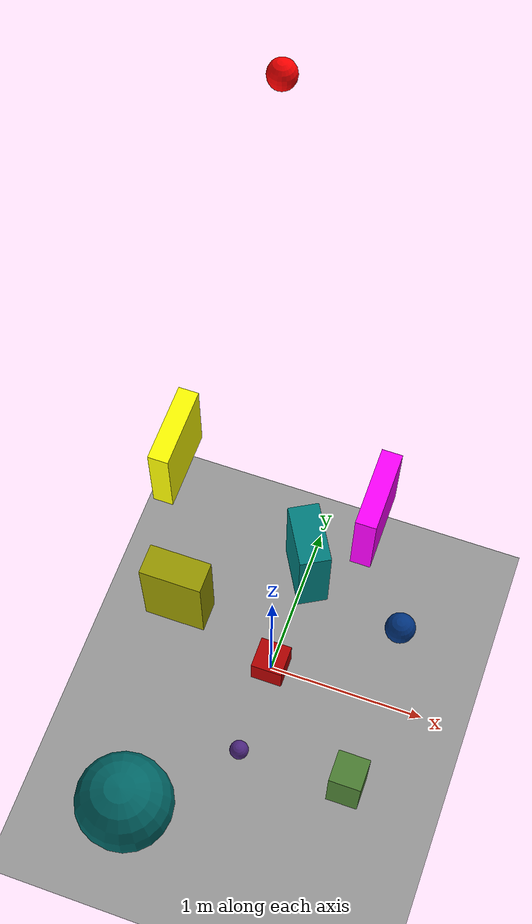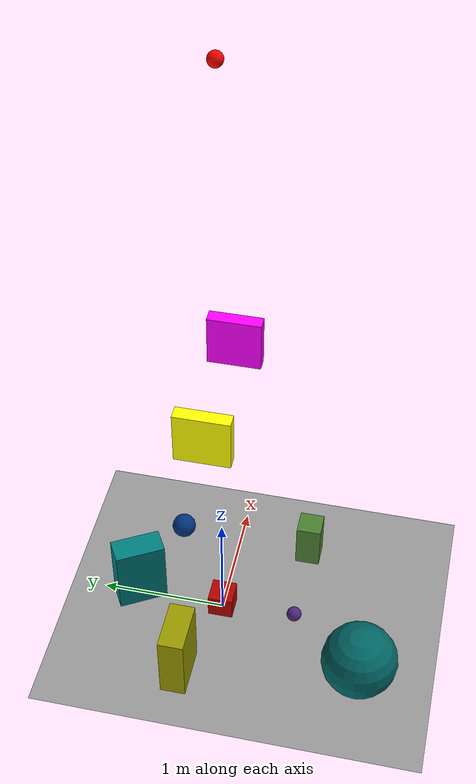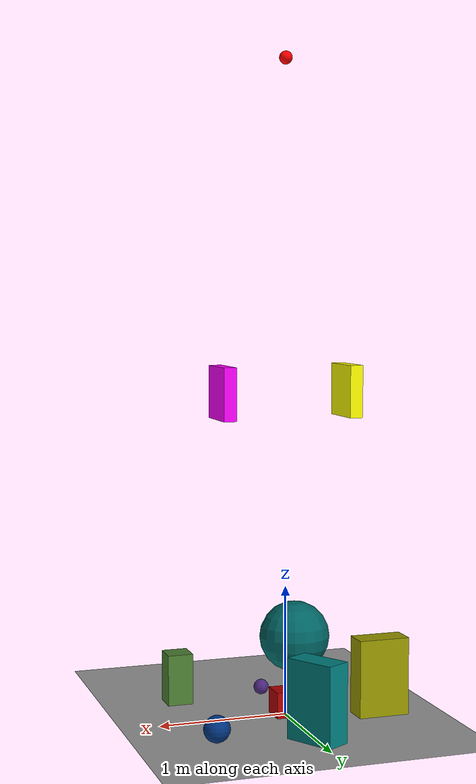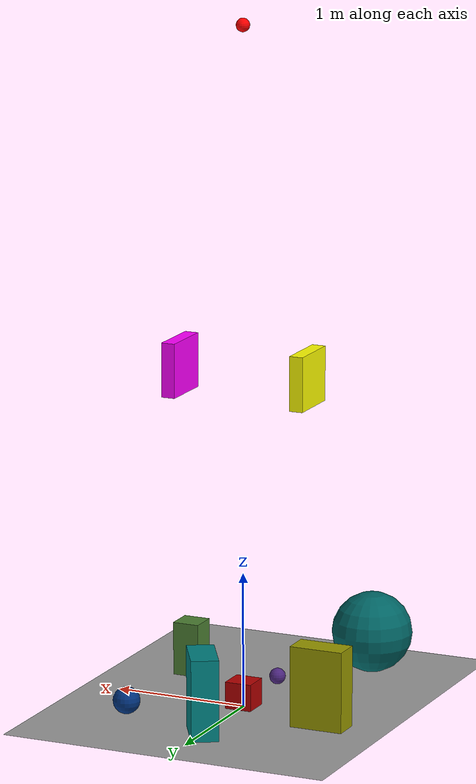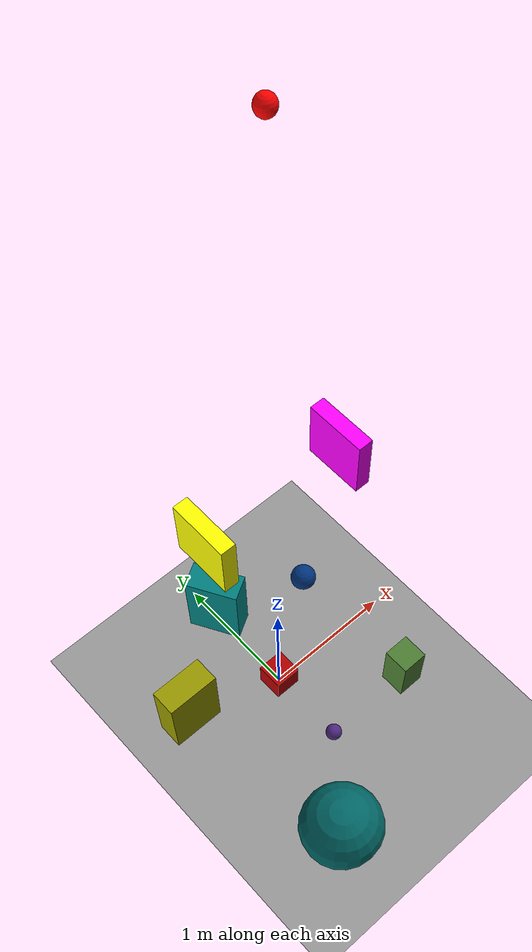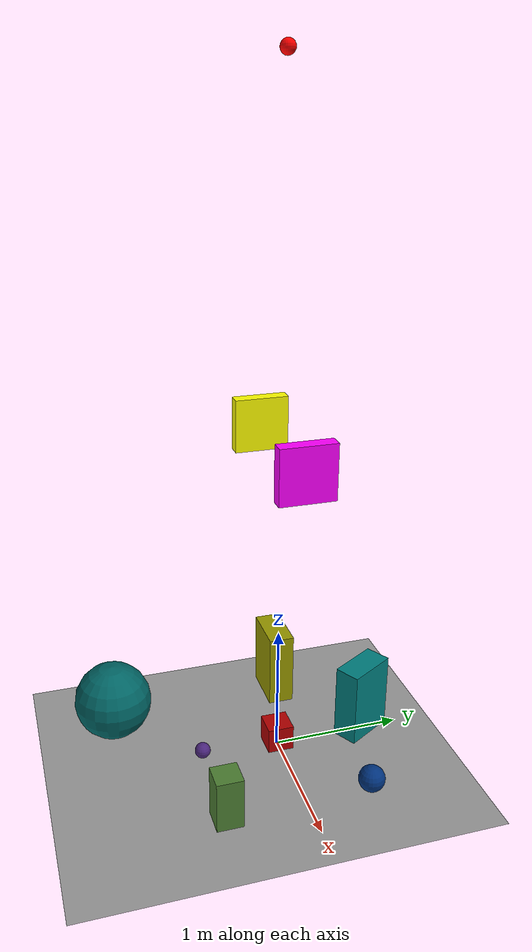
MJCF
<mujoco>
   <visual>
      <headlight ambient="1 1 1" />
   </visual>

   <option gravity="0 0 -2" />

   <worldbody>
      <light diffuse=".5 .5 .5" pos="0 0 3" dir="0 0 -1"/>

      <geom type="plane" size="3 3 0.1" rgba=".6 .6 .6 1"/>

      <body pos="0 0 5" euler="0 0 0">
         <joint type="slide" name="x-slide" axis="1 0 0"/>
         <joint type="slide" name="y-slide" axis="0 1 0"/>
         <joint type="slide" name="z-slide" axis="0 0 1"/>
         <geom type="sphere" size=".05" rgba="255 0 0 1" mass="10"/>

         <body pos="-0.5 0 -2.5" euler="0 90 0">
            <joint type="slide" name="arm1"/>
            <geom type="box" size=".2 .2 .05" rgba="255 128 0 1" mass="100"/>
         </body>
         <body pos="0.5 0 -2.5" euler="0 -90 0">
            <joint type="slide" name="arm2"/>
            <geom type="box" size=".2 .2 .05" rgba="255 0 255 1" mass="100"/>
         </body>
      </body>

      <body pos="0 0 0.1" euler="0 0 0">
         <joint type = "free"/>
         <geom type="box" size=".1 .1 .1" rgba="0.7 0 0 1"/>
      </body>

      <body pos="0.7 0.5 0.1" euler="0 0 0">
         <joint type = "free"/>
         <geom type="sphere" size=".1" rgba="0 0.2 0.5 1"/>
      </body>

      <body pos="-0.7 0.2 .3" euler="0 0 90">
         <joint type = "free"/>
         <geom type="box" size=".1 .2 .3" rgba="0.6 0.6 0 1"/>
      </body>

      <body pos="-0.5 -1.2 .3" euler="0 0 0">
         <joint type = "free"/>
         <geom type="sphere" size=".3" rgba="0 .4 .4 1"/>
      </body>

      <body pos="0 .7 .3" euler="0 0 30">
         <joint type = "free"/>
         <geom type="box" size=".1 .2 .3" rgba="0 .5 .5 1"/>
      </body>

      <body pos="0 -.6 .06" euler="0 0 0">
         <joint type = "free"/>
         <geom type="sphere" size=".06" rgba=".3 .15 .5 1"/>
      </body>

      <body pos=".7 -.6 .2" euler="0 0 0">
         <joint type = "free"/>
         <geom type="box" size=".1 .1 .2" rgba=".3 .5 .2 1"/>
      </body>

   </worldbody>
   <actuator>

      <position name="x-pos" joint="x-slide" kp="1000"/>
      <velocity name="x-vel" joint="x-slide" kv="1000"/>

      <position name="y-pos" joint="y-slide" kp="1000"/>
      <velocity name="y-vel" joint="y-slide" kv="1000"/>

      <position name="z-pos" joint="z-slide" kp="1000"/>
      <velocity name="z-vel" joint="z-slide" kv="1000"/>

      <position name="armp1" joint="arm1" kp="2000"/>
      <velocity name="armv1" joint="arm1" kv="2000"/>

      <position name="armp2" joint="arm2" kp="2000"/>
      <velocity name="armv2" joint="arm2" kv="2000"/>
   </actuator>
</mujoco>
